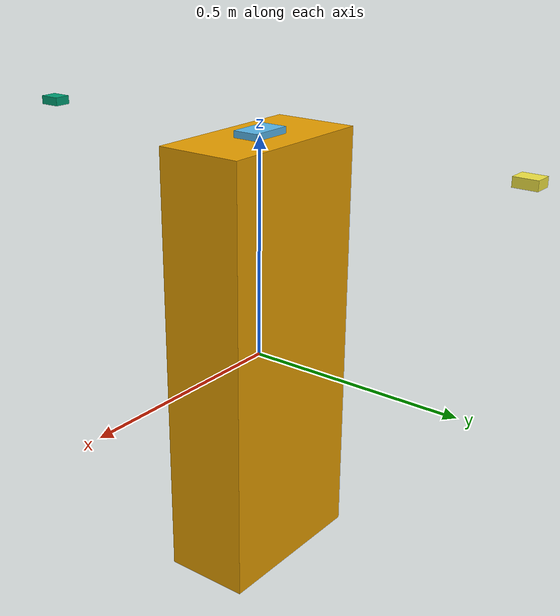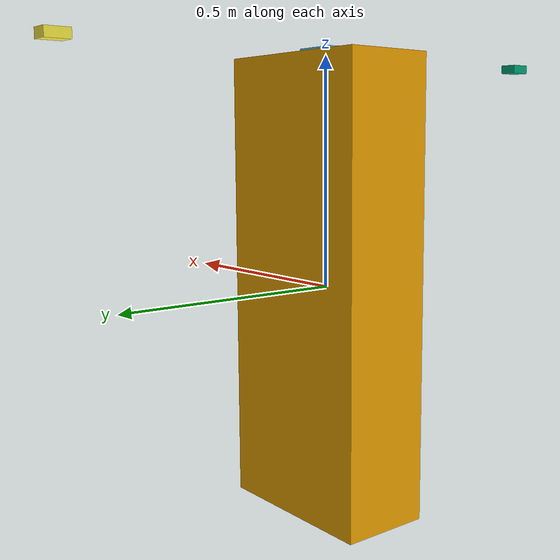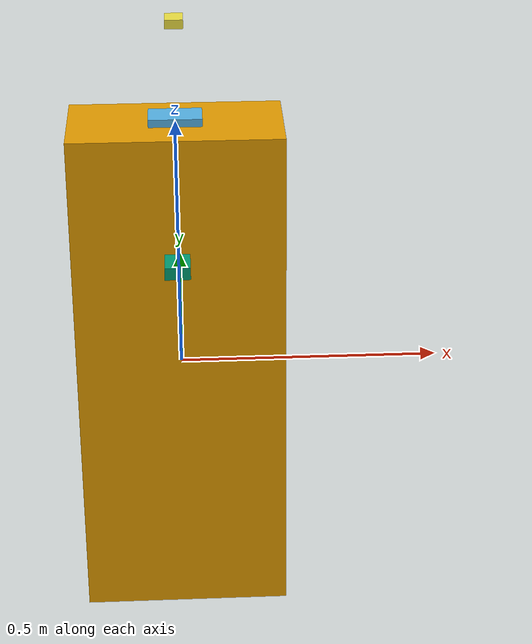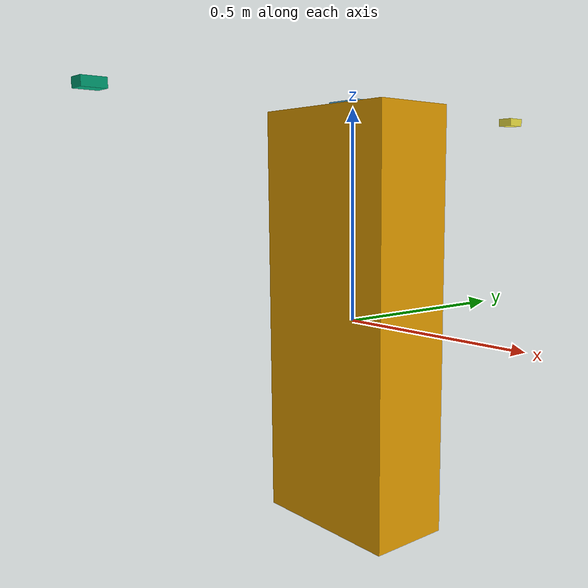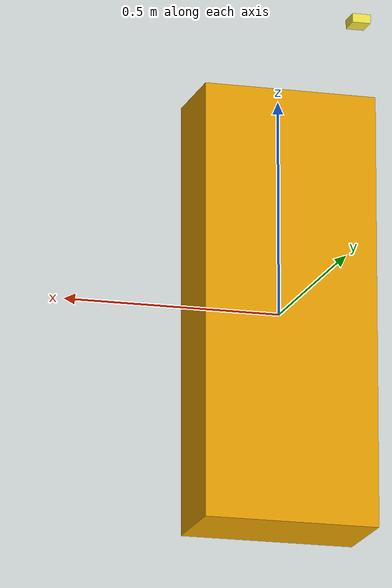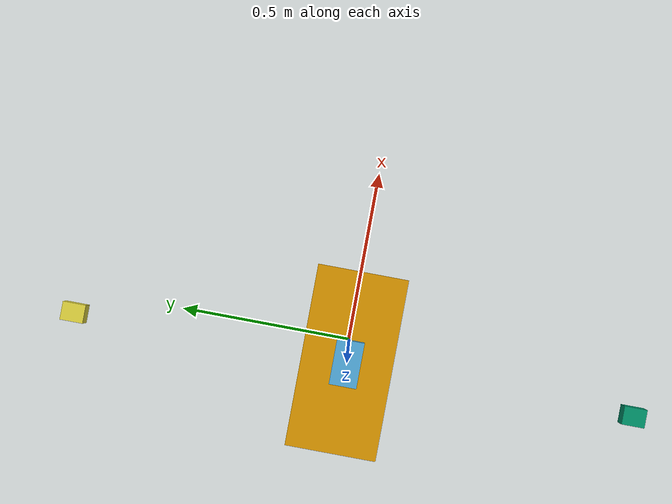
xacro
<?xml version="1.0"?>

<robot name="apl" xmlns:xacro="http://ros.org/wiki/xacro">

  <!-- Cart origin frames -->
  <link name="base_link">
    <visual>
      <geometry>
        <box size="0.4 0.2 1.0" />
      </geometry>
    </visual>
  </link>

  <link name="imu_link">
    <visual>
      <geometry>
        <box size="0.1 0.06 0.015" />
      </geometry>
    </visual>
  </link>

  <joint name="imu_joint" type="fixed">
    <parent link="base_link" />
    <child link="imu_link" />
    <origin xyz="0.0 0.0 0.5075" rpy="0.0 0.0 3.14159"/>
  </joint>

  <link name="gq7_gnss_1_antenna_link">
    <visual>
      <geometry>
        <box size="0.04 0.05 0.02" />
      </geometry>
    </visual>
  </link>

  <joint name="gq7_gnss_1_antenna_joint" type="fixed">
    <parent link="base_link" />
    <child link="gq7_gnss_1_antenna_link" />
    <origin xyz="0.0 -0.63 0.501"/>
  </joint>

  <link name="gq7_gnss_2_antenna_link">
    <visual>
      <geometry>
        <box size="0.04 0.05 0.02" />
      </geometry>
    </visual>
  </link>

  <joint name="gq7_gnss_2_antenna_joint" type="fixed">
    <parent link="base_link" />
    <child link="gq7_gnss_2_antenna_link" />
    <origin xyz="0.0 0.60 0.501" />
  </joint>

</robot>
